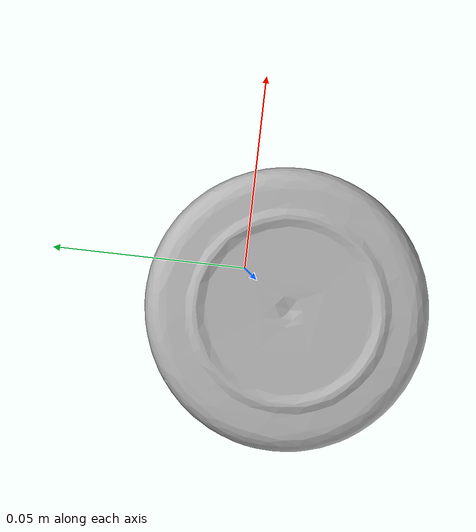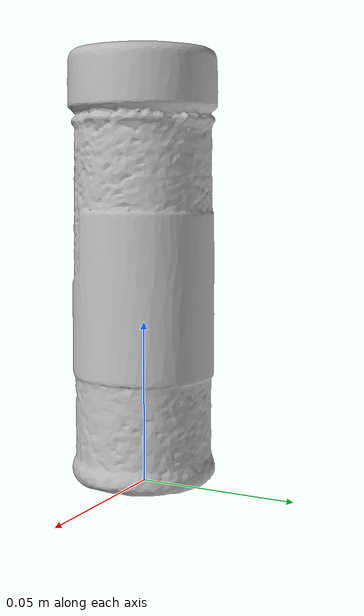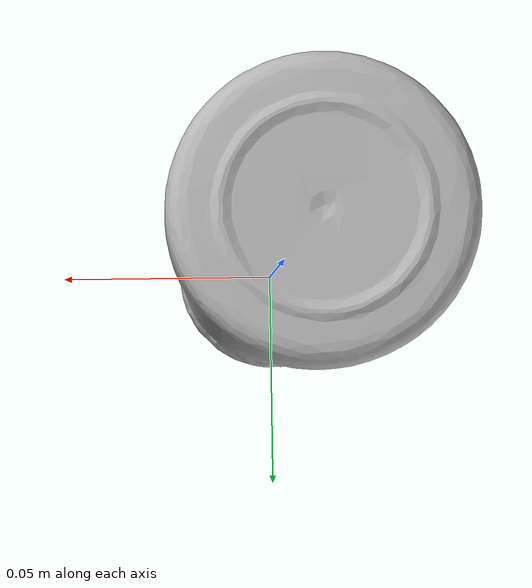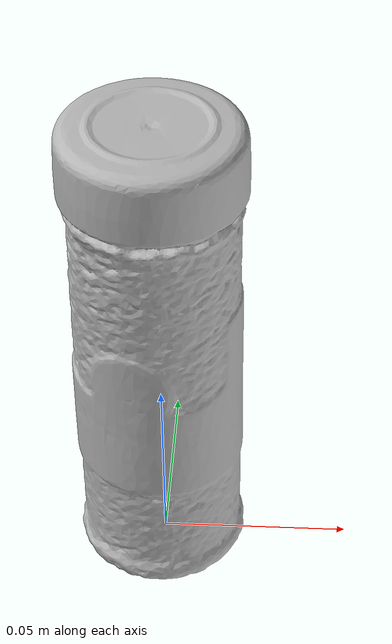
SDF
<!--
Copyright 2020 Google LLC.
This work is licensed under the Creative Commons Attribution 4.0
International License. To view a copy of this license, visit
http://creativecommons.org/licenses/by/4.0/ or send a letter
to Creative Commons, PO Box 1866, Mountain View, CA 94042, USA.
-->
<?xml version="1.0" ?>
<sdf version="1.6">
  <model name="Wilton_Pearlized_Sugar_Sprinkles_525_oz_Gold">
    <link name="link_0">
      <visual name="visual">
        <geometry>
          <mesh>
            <uri>meshes/model.obj</uri>
          </mesh>
        </geometry>
      </visual>
      <collision name="collision_0">
        <geometry>
          <mesh>
            <uri>meshes/model.obj</uri>
          </mesh>
        </geometry>
      </collision>
    </link>
  </model>
</sdf>
